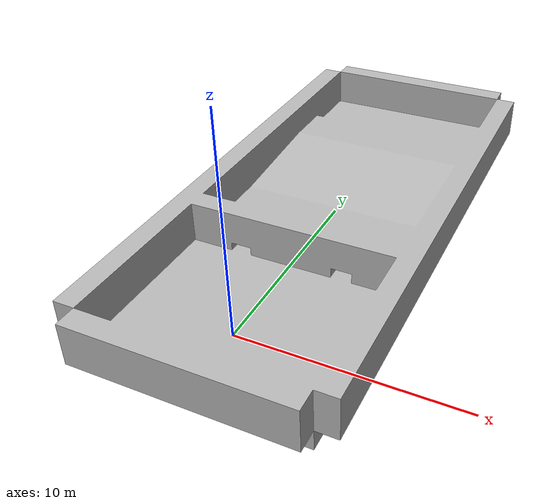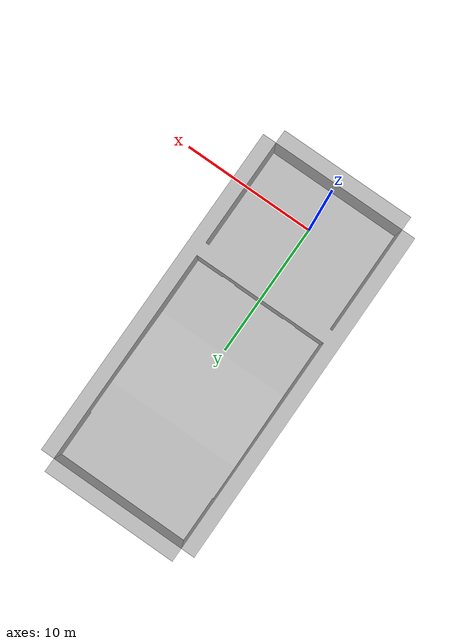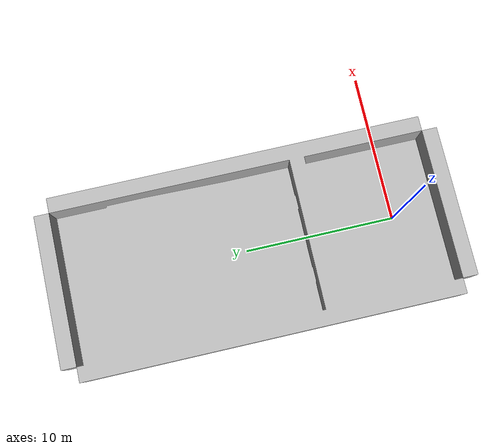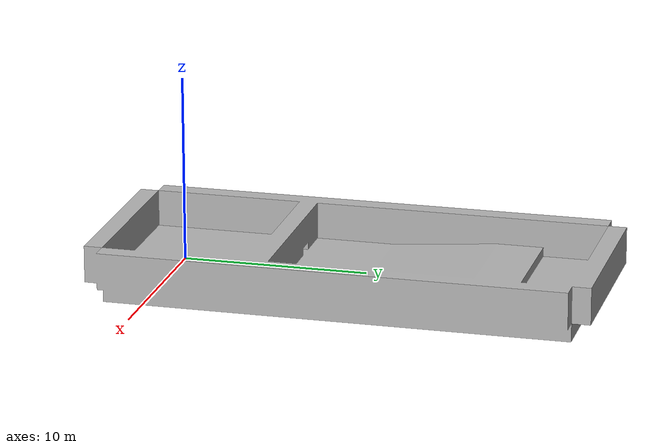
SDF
<?xml version="1.0" ?>
<sdf version="1.5">
  <model name="scenario_2">
    <pose>0 0 0 0 0 0</pose>
    <static>true</static>
    <link name="body">
      <visual name="visual">
        <geometry>
          <mesh><uri>model://scenario_2/media/scenario_2.dae</uri></mesh>
        </geometry>
      </visual>
      <collision name="collision">
        <geometry>
          <mesh><uri>model://scenario_2/media/scenario_2.dae</uri></mesh>
        </geometry>
      </collision>
    </link>
  </model>
</sdf>
